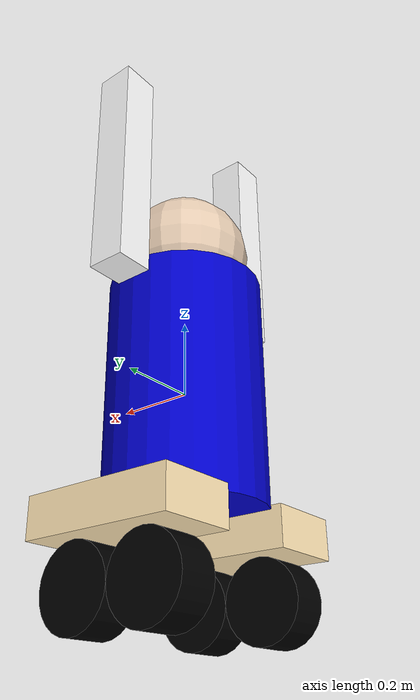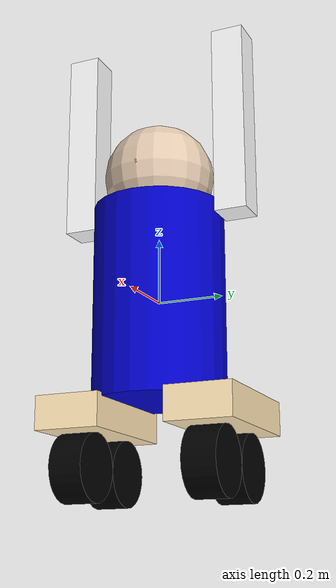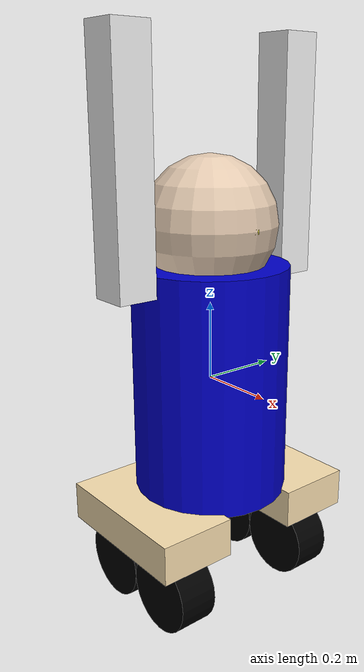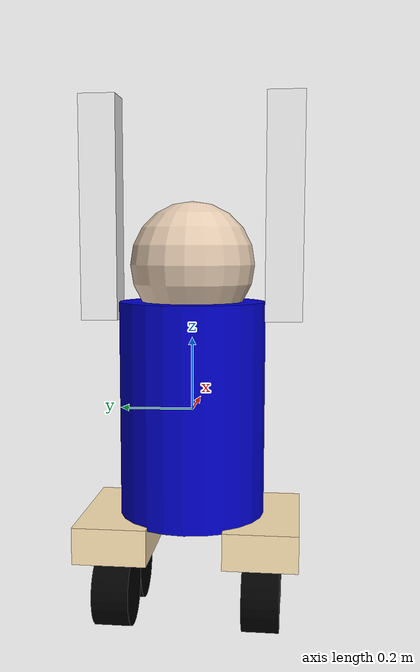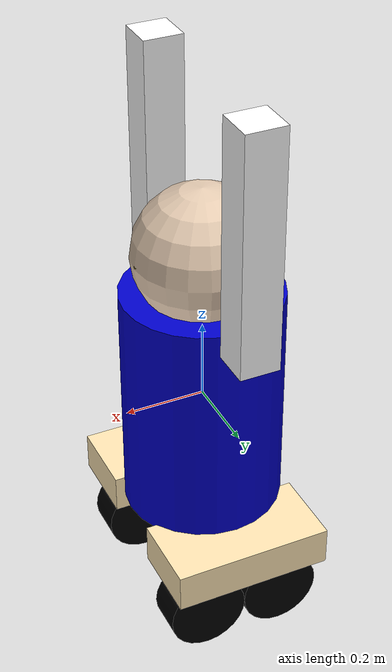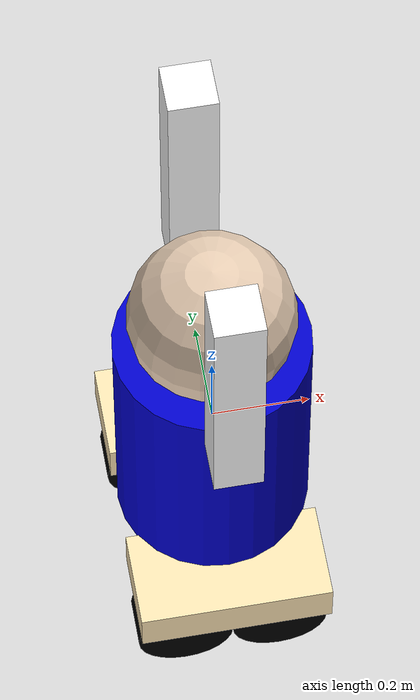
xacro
<?xml version="1.0"?>

<robot xmlns:xacro="http://www.ros.org/wiki/xacro" name = "xacrobo">

    <material name="blue">
        <color rgba="0 0 0.8 1"/>
    </material>

    <material name="white">
        <color rgba="1 1 1 1"/>
    </material>

    <material name="skin">
        <color rgba="0.9 0.8 0.7 1"/>
    </material>

    <material name="black">
        <color rgba="0 0 0 1"/>
    </material>

    <material name="peach">
        <color rgba="1.0 0.898 0.706 1.0"/>
    </material>

                            <!-- DEFAULT INERTIAL -->
    <xacro:macro name="def_inertial" params="mass">
        <inertial>
            <mass value="${mass}"/>
            <inertia ixx="1e-3" iyy="1e-3" izz="1e-3" ixy="0" ixz="0" iyz="0"/>
        </inertial>
    </xacro:macro>

                        <!-- BASE FOOTPRINT  we need this taaki KDL ko dikkat na ho, it wants first link to be massless -->

    <link name="base_footprint">
    </link>

    <joint name="base_joint" type="fixed">
        <parent link="base_footprint"/>
        <child link="base_link"/>
        <origin xyz="0 0 0" rpy="0 0 0"/>
    </joint>

                            <!-- BODY -->
    <link name="base_link">
        <visual>
            <geometry>
                <cylinder length="0.6" radius="0.2"/>
            </geometry>
            <material name="blue"/>
        </visual>
        <collision>
            <geometry>
                <cylinder length="0.6" radius="0.2"/>
            </geometry>
        </collision>
        <xacro:def_inertial mass="10"/>
    </link>

                        <!-- HEAD with NOSE -->

    <link name="head">
        <visual>
            <geometry>
                <sphere radius="0.17"/>
            </geometry>
            <material name="skin"/>
            <origin rpy="0 0 0" xyz="0 0 0"/>
        </visual>

        <collision>
            <geometry>
                <sphere radius="0.17"/>
            </geometry>
        </collision>

        <inertial>
            <mass value="3"/>
            <inertia ixx="1e-3" ixy="0.0" ixz="0.0" iyy="1e-3" iyz="0.0" izz="1e-3" />
        </inertial>
    </link>

    <joint name="head_to_body" type="continuous">
        <parent link="base_link"/>
        <child link="head"/>
        <origin xyz = "0 0 0.4"/>
        <axis xyz="0 0 1"/>
    </joint>

    <link name="nose">
        <visual>
            <geometry>
                <sphere radius="0.02"/>
            </geometry>
        </visual>
        <xacro:def_inertial mass="1"/>
        <collision>
            <geometry>
                <sphere radius="0.02"/>
            </geometry>
        </collision>

    </link>

    <joint name="nose_to_head" type="fixed">
        <parent link="head"/>
        <child link="nose"/>
        <origin xyz = "0.15 0 0"/>
    </joint>

                        <!-- ARM -->

    <xacro:macro name="arm" params="rl reflect">

        <link name="${rl}_arm">
            <visual>
                <geometry>
                    <box size="0.6 0.1 0.1"/>
                </geometry>
                <origin rpy= "0 -1.57079 0" xyz="0 0 0.3"/>
                <material name="white"/>
            </visual>
            <xacro:def_inertial mass="6"/>
            <collision>
                <geometry>
                    <box size="0.6 0.1 0.1"/>
                </geometry>
            </collision>

        </link>

        <joint name="base_to_${rl}_arm" type="revolute">
            <parent link="base_link"/>
            <child link="${rl}_arm"/>
            <origin xyz="0 ${reflect*0.25} 0.25"/>
            <axis xyz="0 1 0"/>
            <limit effort="1000" lower="0" upper="1.57" velocity="0.5"/>
        </joint>

    </xacro:macro>

    <xacro:arm rl="right" reflect="-1"/>
    <xacro:arm rl="left" reflect="1"/>

                        <!-- FEET -->

    <xacro:macro name="feet" params="rl reflect">

        <link name="${rl}_foot">
            <visual>
                <geometry>
                    <box size="0.4 0.2 0.1"/>
                </geometry>
                <material name="peach"/>
                <origin rpy="0 0 0" xyz="0 0 0"/>
            </visual>
            <xacro:def_inertial mass="6"/>
            <collision>
                <geometry>
                    <box size="0.4 0.2 0.1"/>
                </geometry>
            </collision>
        </link>

        <joint name="body_to_${rl}_foot" type="fixed">
            <parent link="base_link"/>
            <child link="${rl}_foot"/>
            <origin xyz="0 ${reflect*0.2} -0.34"/>
        </joint>

    </xacro:macro>

    <xacro:feet rl="right" reflect="-1"/>
    <xacro:feet rl="left" reflect="1"/>

                        <!-- WHEELS -->

    <xacro:macro name="wheels" params="rl fb reflect">
        <link name="${rl}_${fb}_wheel">
            <visual>
                <geometry>
                    <cylinder length="0.1" radius="0.1"/>
                </geometry>
                <origin rpy="${pi/2} 0 0"/>
                <material name="black"/>
            </visual>
            <xacro:def_inertial mass="3"/>
            <collision>
                <geometry>
                    <cylinder length="0.1" radius="0.1"/>
                </geometry>
            </collision>
        </link>

        <joint name="${rl}_foot_${rl}_${fb}_wheel" type="fixed">
            <parent link="${rl}_foot"/>
            <child link="${rl}_${fb}_wheel"/>
            <origin xyz="${reflect*0.1} 0 -0.15"/>
        </joint>
    </xacro:macro>

    <xacro:wheels rl="right" fb="front" reflect="1.0"/>
    <xacro:wheels rl="right" fb="back" reflect="-1.0"/>
    <xacro:wheels rl="left" fb="front" reflect="1.0"/>
    <xacro:wheels rl="left" fb="back" reflect="-1.0"/>

                        <!-- REQUIREMENTS FOR GAZEBO -->
    <xacro:include filename="material.xacro"/>

    <ros2_control name="GazeboSystem" type="system">
    <hardware>
        <plugin>gazebo_ros2_control/GazeboSystem</plugin>
    </hardware>
    <joint name="head_swivel" />
    </ros2_control>

    <gazebo>
    <plugin filename="libgazebo_ros2_control.so" name="gazebo_ros2_control">
        <parameters>$(find urdf_sim_tutorial)/config/09a-minimal.yaml</parameters>
    </plugin>
    </gazebo>

</robot>
